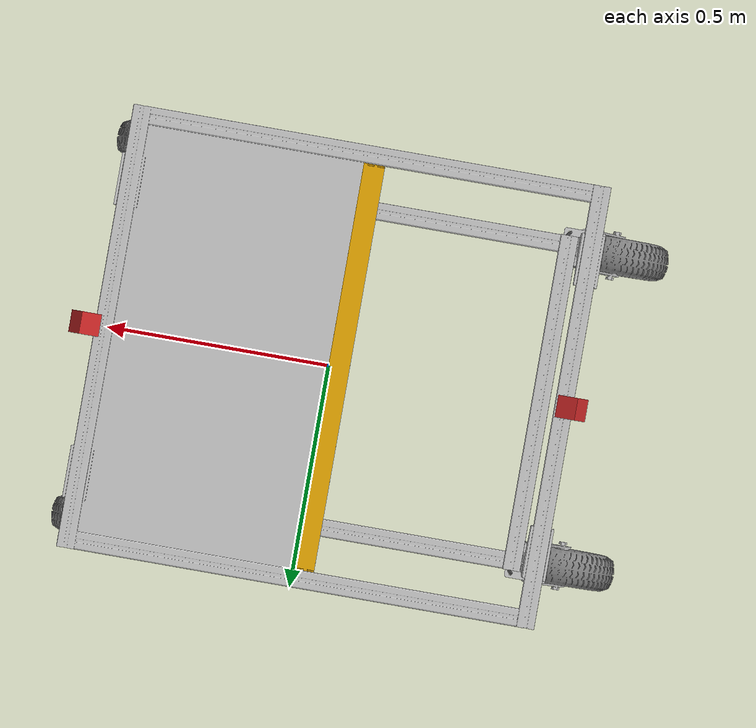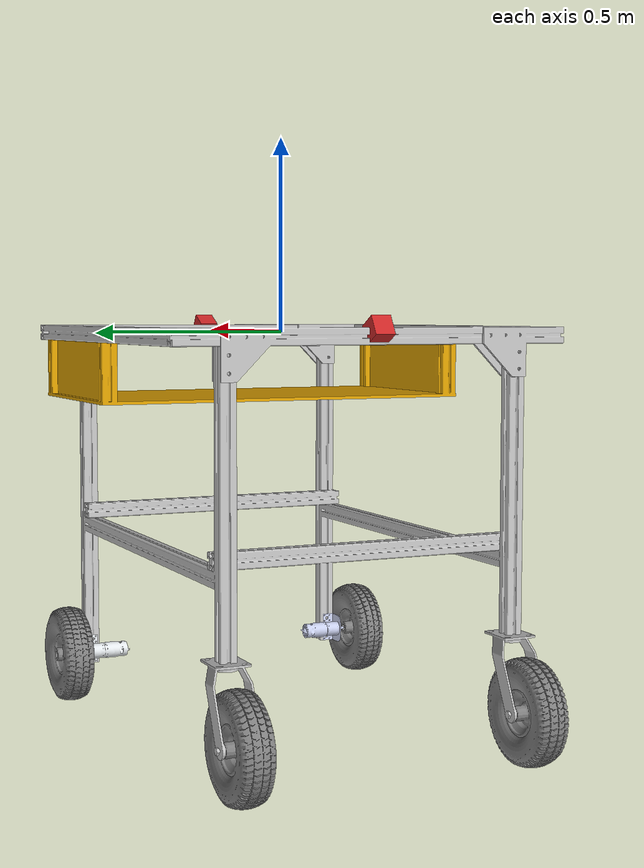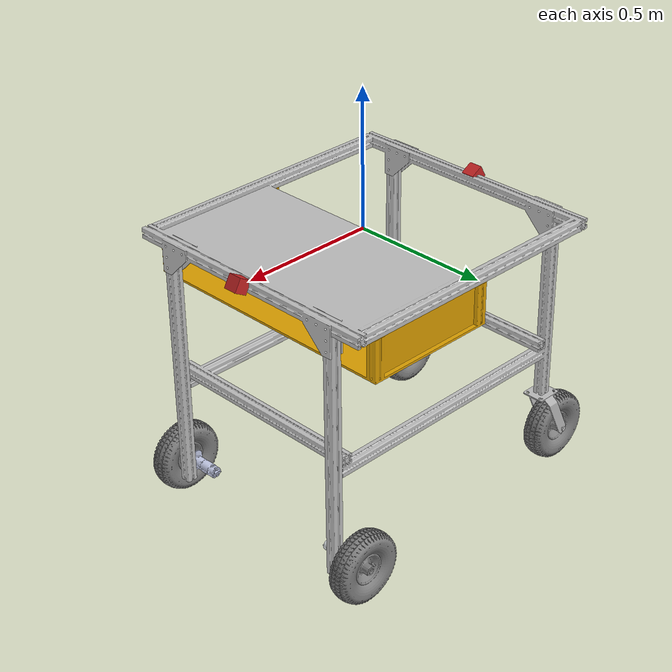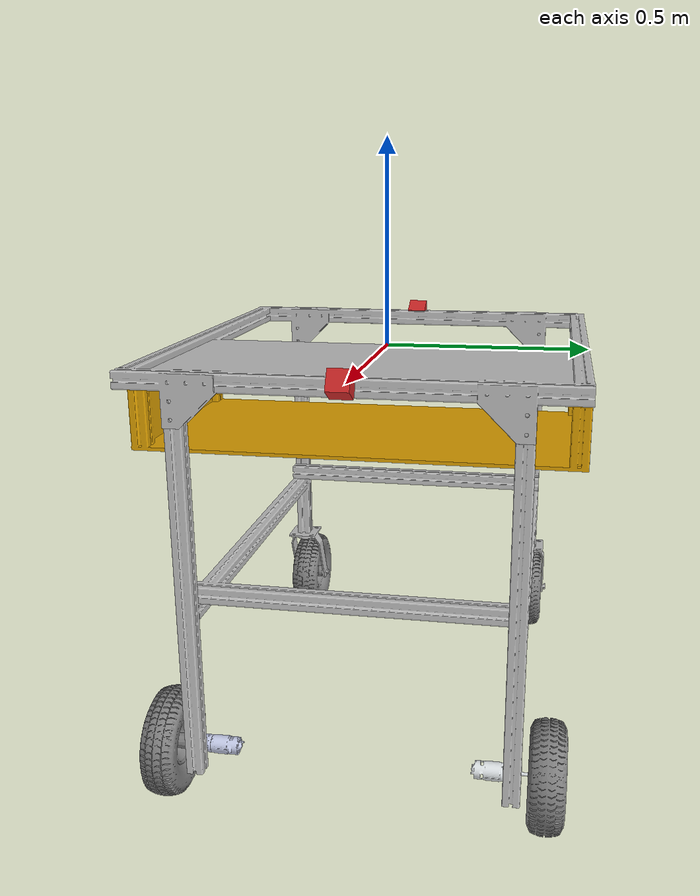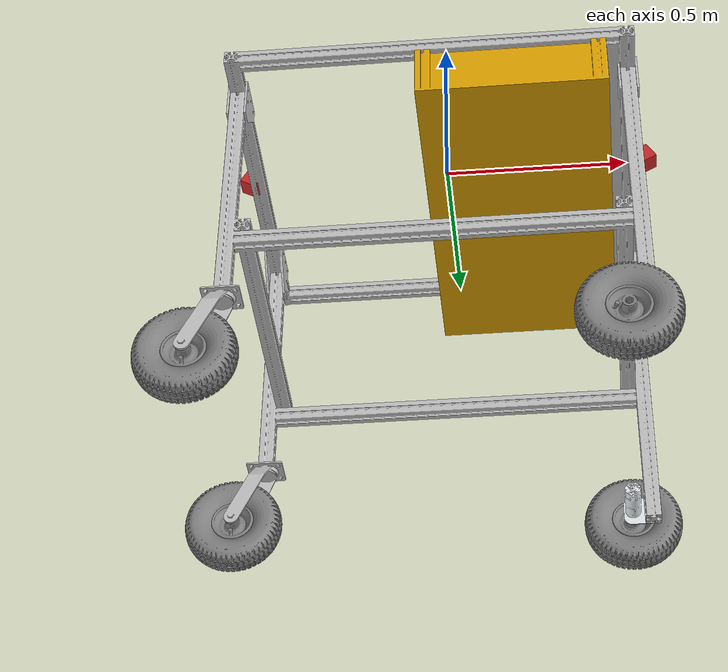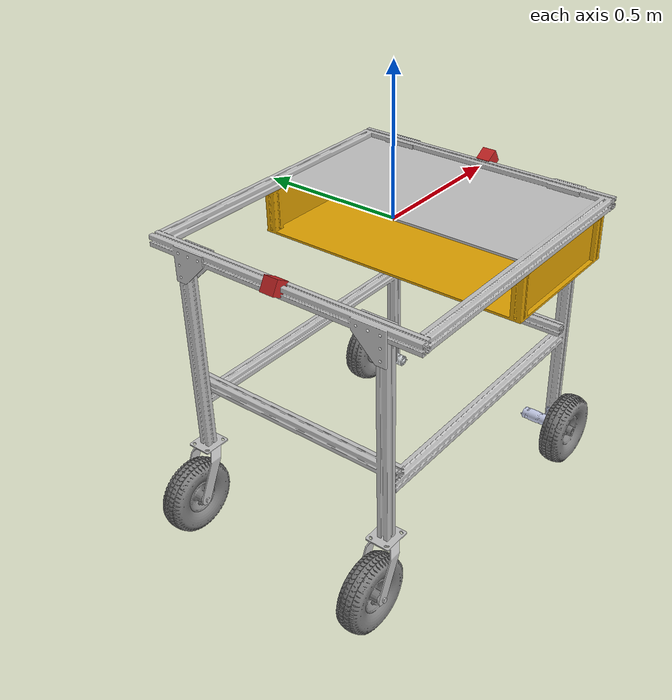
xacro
<?xml version="1.0"?>

<robot name="agribot" xmlns:xacro="http://www.ros.org/wiki/xacro">

  <xacro:property name="camera_link_front" value="0.05" /> <!-- Size of square 'camera' box -->
  <xacro:property name="camera_link_back" value="0.05" /> <!-- Size of square 'camera' box -->

  <xacro:property name="M_PI" value="3.14159265359" />
  <xacro:property name="M_PI2" value="1.57079632679" />

  <xacro:property name="_friction" value="0.0001" />
  <xacro:property name="_damping" value="0.001" />
  <xacro:property name="_velocity" value="0.5" />
  <xacro:property name="_effort" value="1000.0" />
  <xacro:property name="_lower_limit" value="-6.0" />
  <xacro:property name="_higher_limit" value="6.0" />

  <xacro:include filename="$(find agribot_control)/urdf/agribot.gazebo" />
  <xacro:include filename="$(find agribot_control)/urdf/materials.xacro" />
  <xacro:include filename="$(find agribot_control)/urdf/macros.xacro" />

  <link
    name="base_link">
    <inertial>
      <origin
        xyz="0.111078485559937 0.000705580494722497 -0.00585333353825024"
        rpy="0 0 0" />
      <mass
        value="7.9509272490726" />
      <inertia
        ixx="0.919120108816412"
        ixy="0.000692520451882764"
        ixz="-0.00181722795019319"
        iyy="1.00413979518982"
        iyz="-1.03972367001855E-05"
        izz="1.9202806735878" />
    </inertial>
    <visual>
      <origin
        xyz="0 0 0"
        rpy="0 0 0" />
      <geometry>
        <mesh
          filename="package://agribot_control/meshes/base_link.STL" />
      </geometry>
      <material
        name="">
        <color
          rgba="0.752941176470588 0.752941176470588 0.752941176470588 1" />
      </material>
    </visual>
    <collision>
      <origin
        xyz="0 0 0"
        rpy="0 0 0" />
      <geometry>
        <mesh
          filename="package://agribot_control/meshes/base_link.STL" />
      </geometry>
    </collision>
  </link>
  <link
    name="left_leg">
    <inertial>
      <origin
        xyz="-1.66533453693773E-16 -0.477061379270826 0.150081974979978"
        rpy="0 0 0" />
      <mass
        value="2.41451388541046" />
      <inertia
        ixx="0.57326370267514"
        ixy="-1.55004115314149E-16"
        ixz="-2.24158119274023E-17"
        iyy="0.0982101042699239"
        iyz="-0.0391744335677037"
        izz="0.475796165334593" />
    </inertial>
    <visual>
      <origin
        xyz="0 0 0"
        rpy="0 0 0" />
      <geometry>
        <mesh
          filename="package://agribot_control/meshes/left_leg.STL" />
      </geometry>
      <material
        name="">
        <color
          rgba="0.752941176470588 0.752941176470588 0.752941176470588 1" />
      </material>
    </visual>
    <collision>
      <origin
        xyz="0 0 0"
        rpy="0 0 0" />
      <geometry>
        <mesh
          filename="package://agribot_control/meshes/left_leg.STL" />
      </geometry>
    </collision>
  </link>
  <joint
    name="left_leg_joint"
    type="fixed">
    <origin
      xyz="0.507757199999999 0.37 -0.3288"
      rpy="3.14159265358979 0 1.5707963267949" />
    <parent
      link="base_link" />
    <child
      link="left_leg" />
    <axis
      xyz="0 0 0" />
  </joint>
  <link
    name="right_leg">
    <inertial>
      <origin
        xyz="0.50695885654552 -0.0152487488854501 -0.146120125360058"
        rpy="0 0 0" />
      <mass
        value="3.84570821080266" />
      <inertia
        ixx="0.296420792952695"
        ixy="-0.0371083251981886"
        ixz="0.0143777602564362"
        iyy="1.00530306142733"
        iyz="-0.00813249832445225"
        izz="0.905217374842006" />
    </inertial>
    <visual>
      <origin
        xyz="0 0 0"
        rpy="0 0 0" />
      <geometry>
        <mesh
          filename="package://agribot_control/meshes/right_leg.STL" />
      </geometry>
      <material
        name="">
        <color
          rgba="0.752941176470588 0.752941176470588 0.752941176470588 1" />
      </material>
    </visual>
    <collision>
      <origin
        xyz="0 0 0"
        rpy="0 0 0" />
      <geometry>
        <mesh
          filename="package://agribot_control/meshes/right_leg.STL" />
      </geometry>
    </collision>
  </link>
  <joint
    name="right_leg_joint"
    type="fixed">
    <origin
      xyz="-0.492242799999999 -0.0851999999999998 -0.504"
      rpy="-1.5707963267949 0 0" />
    <parent
      link="base_link" />
    <child
      link="right_leg" />
    <axis
      xyz="0 0 0" />
  </joint>
  <link
    name="sensor_box">
    <inertial>
      <origin
        xyz="-1.38777878078145E-16 0.0253479649063364 -1.40813899445239E-17"
        rpy="0 0 0" />
      <mass
        value="5.54829934163486" />
      <inertia
        ixx="0.69941567819577"
        ixy="-1.95156391047389E-18"
        ixz="1.17961196366423E-16"
        iyy="0.81793824551903"
        iyz="-1.8856341645188E-17"
        izz="0.137055687455583" />
    </inertial>
    <visual>
      <origin
        xyz="0 0 0"
        rpy="0 0 0" />
      <geometry>
        <mesh
          filename="package://agribot_control/meshes/sensor_box.STL" />
      </geometry>
      <material
        name="">
        <color
          rgba="0.874509803921569 0.631372549019608 0 1" />
      </material>
    </visual>
    <collision>
      <origin
        xyz="0 0 0"
        rpy="0 0 0" />
      <geometry>
        <mesh
          filename="package://agribot_control/meshes/sensor_box.STL" />
      </geometry>
    </collision>
  </link>
  <joint
    name="sensor_box_joint"
    type="fixed">
    <origin
      xyz="0.2027572 0 -0.177"
      rpy="1.5707963267949 0 0" />
    <parent
      link="base_link" />
    <child
      link="sensor_box" />
    <axis
      xyz="0 0 0" />
  </joint>
  <link
    name="base_footprint" />
  <joint
    name="base_footprint_joint"
    type="fixed">
    <origin
      xyz="-0.0222427999999998 0 -1.034"
      rpy="0 0 0" />
    <parent
      link="base_link" />
    <child
      link="base_footprint" />
    <axis
      xyz="0 0 0" />
  </joint>
  <link
    name="imu_link" />
  <joint
    name="imu_link_joint"
    type="fixed">
    <origin
      xyz="0.5277572 0 -0.0209520000000005"
      rpy="0 0 0" />
    <parent
      link="base_link" />
    <child
      link="imu_link" />
    <axis
      xyz="0 0 0" />
  </joint>
  <link
    name="gps_link" />
  <joint
    name="gps_link_joint"
    type="fixed">
    <origin
      xyz="0 0 0"
      rpy="0 0 0" />
    <parent
      link="base_link" />
    <child
      link="gps_link" />
    <axis
      xyz="0 0 0" />
  </joint>
  <link
    name="zed_center" />
  <joint
    name="zed_center_joint"
    type="fixed">
    <origin
      xyz="0.5037567 0 0.0152379999999996"
      rpy="0 0 0" />
    <parent
      link="base_link" />
    <child
      link="zed_center" />
    <axis
      xyz="0 0 0" />
  </joint>
  <link
    name="front_w_l">
    <inertial>
      <origin
        xyz="0.0169585900383 -6.75068276955737E-05 1.52646951752655E-05"
        rpy="0 0 0" />
      <mass
        value="0.630032967311711" />
      <inertia
        ixx="0.00669221232999861"
        ixy="1.46876065216874E-06"
        ixz="-1.83677052642238E-07"
        iyy="0.00381017219621702"
        iyz="2.02228538609624E-07"
        izz="0.00380710944075326" />
    </inertial>
    <visual>
      <origin
        xyz="0 0 0"
        rpy="0 0 0" />
      <geometry>
        <mesh
          filename="package://agribot_control/meshes/front_w_l.STL" />
      </geometry>
      <material
        name="">
        <color
          rgba="0.501960784313725 0.501960784313725 0.501960784313725 1" />
      </material>
    </visual>
    <collision>
      <origin
        xyz="0 0 0"
        rpy="0 0 0" />
      <geometry>
        <mesh
          filename="package://agribot_control/meshes/front_w_l.STL" />
      </geometry>
    </collision>
  </link>
  <joint
    name="front_wl_j"
    type="continuous">
    <origin
      xyz="0.45576 0.4305 -0.904"
      rpy="3.1416 0 1.5708" />
    <parent
      link="base_link" />
    <child
      link="front_w_l" />
    <axis
      xyz="1 0 0" />
  </joint>
  <link
    name="front_w_r">
    <inertial>
      <origin
        xyz="0.0169585900289108 -6.75068276941859E-05 1.52646951756819E-05"
        rpy="0 0 0" />
      <mass
        value="0.630032967311706" />
      <inertia
        ixx="0.0066922123299986"
        ixy="1.4687606367534E-06"
        ixz="-1.83677063980871E-07"
        iyy="0.00381016787088096"
        iyz="2.02228538641145E-07"
        izz="0.00380710511541725" />
    </inertial>
    <visual>
      <origin
        xyz="0 0 0"
        rpy="0 0 0" />
      <geometry>
        <mesh
          filename="package://agribot_control/meshes/front_w_r.STL" />
      </geometry>
      <material
        name="">
        <color
          rgba="0.501960784313725 0.501960784313725 0.501960784313725 1" />
      </material>
    </visual>
    <collision>
      <origin
        xyz="0 0 0"
        rpy="0 0 0" />
      <geometry>
        <mesh
          filename="package://agribot_control/meshes/front_w_r.STL" />
      </geometry>
    </collision>
  </link>
  <joint
    name="front_wr_j"
    type="continuous">
    <origin
      xyz="0.45576 -0.4305 -0.904"
      rpy="0 0 -1.5708" />
    <parent
      link="base_link" />
    <child
      link="front_w_r" />
    <axis
      xyz="-1 0 0" />
  </joint>
  <link
    name="back_c_l">
    <inertial>
      <origin
        xyz="0.0408020089137942 -2.20027751224317E-06 -0.0753064138736016"
        rpy="0 0 0" />
      <mass
        value="1.78018975141913" />
      <inertia
        ixx="0.0119429751240832"
        ixy="1.51346058960582E-07"
        ixz="0.0047086697609114"
        iyy="0.012719613396601"
        iyz="-3.20565703090961E-07"
        izz="0.00449043316235224" />
    </inertial>
    <visual>
      <origin
        xyz="0 0 0"
        rpy="0 0 0" />
      <geometry>
        <mesh
          filename="package://agribot_control/meshes/back_c_l.STL" />
      </geometry>
      <material
        name="">
        <color
          rgba="0.752941176470588 0.752941176470588 0.752941176470588 1" />
      </material>
    </visual>
    <collision>
      <origin
        xyz="0 0 0"
        rpy="0 0 0" />
      <geometry>
        <mesh
          filename="package://agribot_control/meshes/back_c_l.STL" />
      </geometry>
    </collision>
  </link>

  <joint
    name="back_cl_j"
    type="revolute">
    <origin
      xyz="-0.53224 0.37 -0.74193"
      rpy="-3.1578E-16 2.3679E-16 3.1416" />
    <parent
      link="base_link" />
    <child
      link="back_c_l" />
    <axis
      xyz="0 0 1" />
    <limit effort="${_effort}" lower="${_lower_limit}" upper="${_higher_limit}" velocity="${_velocity}"/>
    <dynamics damping="${_damping}" friction="${_friction}" />
  </joint>
  <link
    name="back_w_l">
    <inertial>
      <origin
        xyz="-0.000406180079597973 -6.75068276938251E-05 1.52646951747659E-05"
        rpy="0 0 0" />
      <mass
        value="0.630032967311717" />
      <inertia
        ixx="0.00669221232999866"
        ixy="1.46876065217403E-06"
        ixz="-1.83677052642392E-07"
        iyy="0.00381017219621705"
        iyz="2.02228538599299E-07"
        izz="0.00380710944075334" />
    </inertial>
    <visual>
      <origin
        xyz="0 0 0"
        rpy="0 0 0" />
      <geometry>
        <mesh
          filename="package://agribot_control/meshes/back_w_l.STL" />
      </geometry>
      <material
        name="">
        <color
          rgba="0.501960784313725 0.501960784313725 0.501960784313725 1" />
      </material>
    </visual>
    <collision>
      <origin
        xyz="0 0 0"
        rpy="0 0 0" />
      <geometry>
        <mesh
          filename="package://agribot_control/meshes/back_w_l.STL" />
      </geometry>
    </collision>
  </link>
  <joint
    name="back_wl_j"
    type="continuous">
    <origin
      xyz="0.079407 0 -0.15715"
      rpy="1.5708 -3.1578E-16 1.5708" />
    <parent
      link="back_c_l" />
    <child
      link="back_w_l" />
    <axis
      xyz="-1 0 0" />
  </joint>
  <link
    name="back_c_r">
    <inertial>
      <origin
        xyz="-0.0408020085623402 2.19978087612205E-06 -0.0753064146672595"
        rpy="0 0 0" />
      <mass
        value="1.78018973135585" />
      <inertia
        ixx="0.0119429749924109"
        ixy="1.51328903334174E-07"
        ixz="-0.00470866980430646"
        iyy="0.0127196133801171"
        iyz="3.20626513970711E-07"
        izz="0.00449043322343492" />
    </inertial>
    <visual>
      <origin
        xyz="0 0 0"
        rpy="0 0 0" />
      <geometry>
        <mesh
          filename="package://agribot_control/meshes/back_c_r.STL" />
      </geometry>
      <material
        name="">
        <color
          rgba="0.752941176470588 0.752941176470588 0.752941176470588 1" />
      </material>
    </visual>
    <collision>
      <origin
        xyz="0 0 0"
        rpy="0 0 0" />
      <geometry>
        <mesh
          filename="package://agribot_control/meshes/back_c_r.STL" />
      </geometry>
    </collision>
  </link>
  <joint
    name="back_cr_j"
    type="revolute">
    <origin
      xyz="-0.53224 -0.37 -0.74193"
      rpy="0 0 0" />
    <parent
      link="base_link" />
    <child
      link="back_c_r" />
    <axis
      xyz="0 0 1" />
    <limit effort="${_effort}" lower="${_lower_limit}" upper="${_higher_limit}" velocity="${_velocity}"/>
    <dynamics damping="${_damping}" friction="${_friction}" />
  </joint>
  <link
    name="back_w_r">
    <inertial>
      <origin
        xyz="-0.000406180073682316 -6.75068276933533E-05 1.52646951745439E-05"
        rpy="0 0 0" />
      <mass
        value="0.630032967311691" />
      <inertia
        ixx="0.0066922123299985"
        ixy="1.46876064431743E-06"
        ixz="-1.83677052786695E-07"
        iyy="0.00381017423444503"
        iyz="2.0222853863883E-07"
        izz="0.0038071114789812" />
    </inertial>
    <visual>
      <origin
        xyz="0 0 0"
        rpy="0 0 0" />
      <geometry>
        <mesh
          filename="package://agribot_control/meshes/back_w_r.STL" />
      </geometry>
      <material
        name="">
        <color
          rgba="0.501960784313725 0.501960784313725 0.501960784313725 1" />
      </material>
    </visual>
    <collision>
      <origin
        xyz="0 0 0"
        rpy="0 0 0" />
      <geometry>
        <mesh
          filename="package://agribot_control/meshes/back_w_r.STL" />
      </geometry>
    </collision>
  </link>
  <joint
    name="back_wr_j"
    type="continuous">
    <origin
      xyz="-0.079407 0 -0.15715"
      rpy="1.5708 0 -1.5708" />
    <parent
      link="back_c_r" />
    <child
      link="back_w_r" />
    <axis
      xyz="-1 0 0" />
  </joint>
  <link
    name="front_m_l">
    <inertial>
      <origin
        xyz="0.000172348602596462 0.00360003940885012 0.0476290867686325"
        rpy="0 0 0" />
      <mass
        value="0.0474773626136393" />
      <inertia
        ixx="6.83629224081374E-05"
        ixy="2.12607715754985E-08"
        ixz="-1.28904972603933E-07"
        iyy="6.89854672203106E-05"
        iyz="-3.66884744302154E-06"
        izz="2.43418019155252E-05" />
    </inertial>
    <visual>
      <origin
        xyz="0 0 0"
        rpy="0 0 0" />
      <geometry>
        <mesh
          filename="package://agribot_control/meshes/front_m_l.STL" />
      </geometry>
      <material
        name="">
        <color
          rgba="0.898039215686275 0.917647058823529 0.929411764705882 1" />
      </material>
    </visual>
    <collision>
      <origin
        xyz="0 0 0"
        rpy="0 0 0" />
      <geometry>
        <mesh
          filename="package://agribot_control/meshes/front_m_l.STL" />
      </geometry>
    </collision>
  </link>
  <joint
    name="front_ml_j"
    type="fixed">
    <origin
      xyz="0.45576 0.30769 -0.904"
      rpy="-1.5708 -1.5272 0" />
    <parent
      link="base_link" />
    <child
      link="front_m_l" />
    <axis
      xyz="0 0 0" />
  </joint>
  <link
    name="front_m_r">
    <inertial>
      <origin
        xyz="0.0323709132313685 0.000104130448797535 1.52149314511518E-05"
        rpy="0 0 0" />
      <mass
        value="0.0474773626136397" />
      <inertia
        ixx="2.43418019121387E-05"
        ixy="3.6709788051459E-06"
        ixz="-3.1187566402171E-08"
        iyy="6.89861359372765E-05"
        iyz="-5.93859827259756E-09"
        izz="6.83622536877904E-05" />
    </inertial>
    <visual>
      <origin
        xyz="0 0 0"
        rpy="0 0 0" />
      <geometry>
        <mesh
          filename="package://agribot_control/meshes/front_m_r.STL" />
      </geometry>
      <material
        name="">
        <color
          rgba="0.792156862745098 0.819607843137255 0.933333333333333 1" />
      </material>
    </visual>
    <collision>
      <origin
        xyz="0 0 0"
        rpy="0 0 0" />
      <geometry>
        <mesh
          filename="package://agribot_control/meshes/front_m_r.STL" />
      </geometry>
    </collision>
  </link>
  <joint
    name="front_mr_j"
    type="fixed">
    <origin
      xyz="0.45926 -0.38769 -0.904"
      rpy="3.1416 0 1.5708" />
    <parent
      link="base_link" />
    <child
      link="front_m_r" />
    <axis
      xyz="0 0 0" />
  </joint>

  <link name="camera_link_front">
    <collision>
      <origin xyz="0 0 0" rpy="0 0 0"/>
      <geometry>
    <box size="${camera_link_front} ${camera_link_front} ${camera_link_front}"/>
      </geometry>
    </collision>

    <visual>
      <origin xyz="0 0 0" rpy="0 0 0"/>
      <geometry>
    <box size="${camera_link_front} ${camera_link_front} ${camera_link_front}"/>
      </geometry>
      <material name="red"/>
    </visual>

    <inertial>
      <mass value="1e-5" />
      <origin xyz="0 0 0" rpy="0 0 0"/>
      <inertia ixx="1e-6" ixy="0" ixz="0" iyy="1e-6" iyz="0" izz="1e-6" />
    </inertial>
  </link>

  <joint name="camera_joint_front" type="fixed">
    <axis xyz="0 1 0" />
    <origin xyz="0.55 0 0.01" rpy="0 1.0472 0"/>
    <parent link="base_link"/>
    <child link="camera_link_front"/>
  </joint>
  <link name="camera_link_back">
    <collision>
      <origin xyz="0 0 0" rpy="0 0 0"/>
      <geometry>
    <box size="${camera_link_back} ${camera_link_back} ${camera_link_back}"/>
      </geometry>
    </collision>

    <visual>
      <origin xyz="0 0 0" rpy="0 0 0"/>
      <geometry>
    <box size="${camera_link_back} ${camera_link_back} ${camera_link_back}"/>
      </geometry>
      <material name="red"/>
    </visual>

    <inertial>
      <mass value="1e-5" />
      <origin xyz="0 0 0" rpy="0 0 0"/>
      <inertia ixx="1e-6" ixy="0" ixz="0" iyy="1e-6" iyz="0" izz="1e-6" />
    </inertial>
  </link>
  <joint name="camera_joint_back" type="fixed">
    <axis xyz="0 1 0" />
    <origin xyz="-0.55 0 0.01" rpy="0 1.0472 3.1415"/>
    <parent link="base_link"/>
    <child link="camera_link_back"/>
  </joint>

  <transmission name="tran3">
    <type>transmission_interface/SimpleTransmission</type>
    <joint name="back_cl_j">
      <hardwareInterface>hardware_interface/EffortJointInterface</hardwareInterface>
    </joint>
    <actuator name="motor_cl">
      <mechanicalReduction>1</mechanicalReduction>
      <hardwareInterface>hardware_interface/EffortJointInterface</hardwareInterface>
    </actuator>
  </transmission>

  <transmission name="tran4">
    <type>transmission_interface/SimpleTransmission</type>
    <joint name="back_cr_j">
      <hardwareInterface>hardware_interface/EffortJointInterface</hardwareInterface>
    </joint>
    <actuator name="motor_cr">
      <mechanicalReduction>1</mechanicalReduction>
      <hardwareInterface>hardware_interface/EffortJointInterface</hardwareInterface>
    </actuator>
  </transmission>

</robot>
